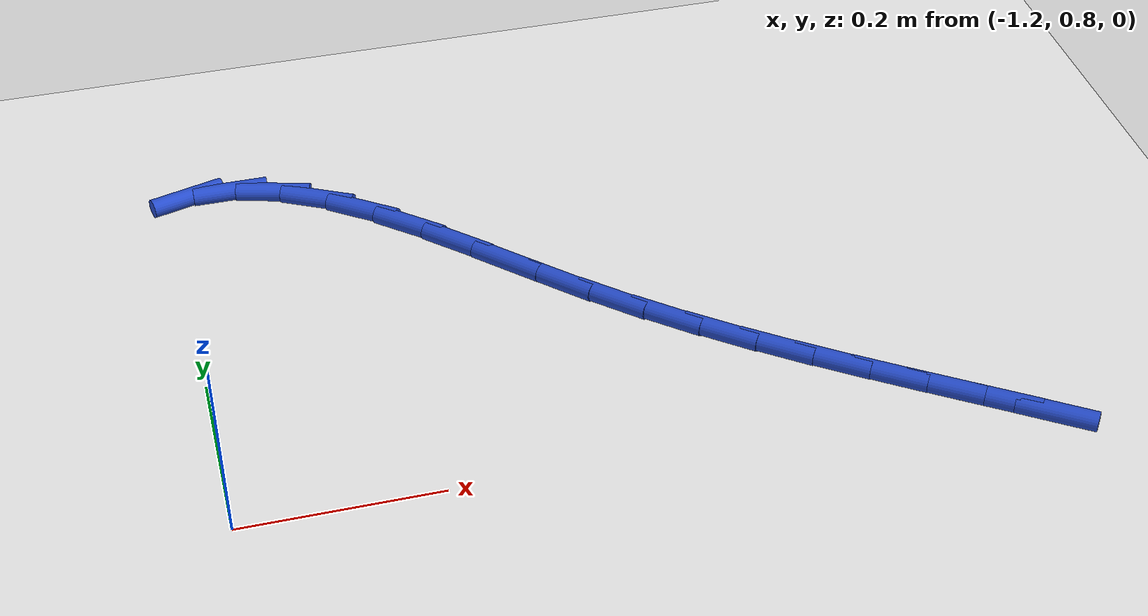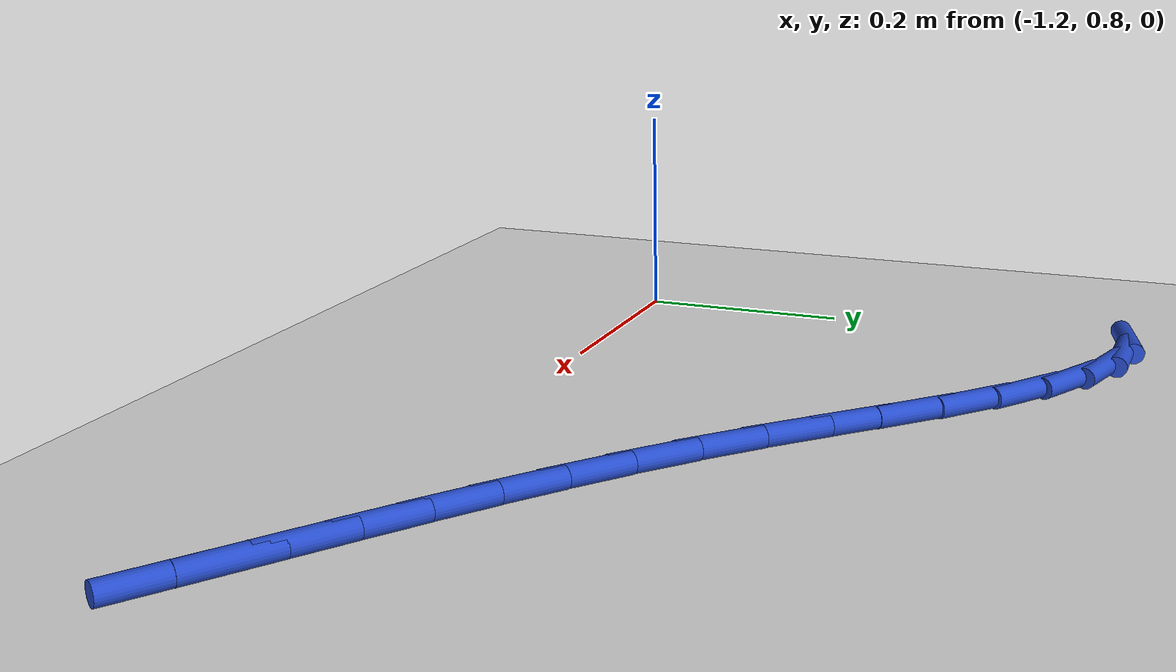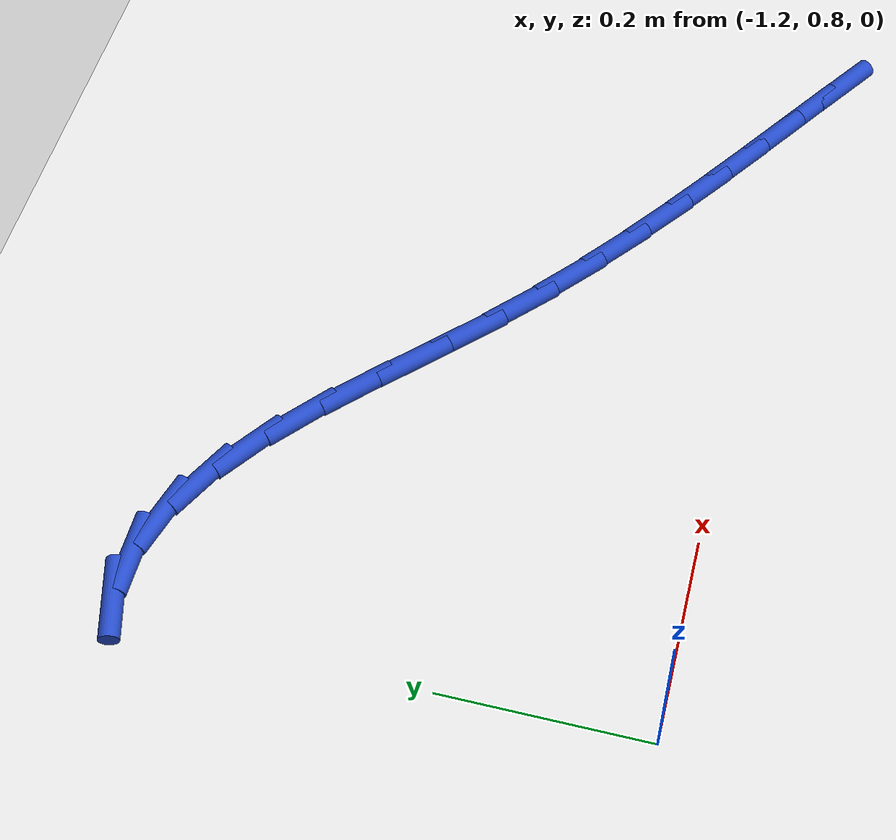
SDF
<sdf version="1.6">
 <world name="default">
  <model name="ground_plane">
   <static>1</static>
   <link name="link">
    <collision name="collision">
     <geometry><plane><normal>0 0 1</normal><size>100 100</size></plane></geometry>
     <surface><friction><ode><mu>100</mu><mu2>50</mu2></ode></friction></surface>
    </collision>
    <visual name="visual">
     <cast_shadows>0</cast_shadows>
     <geometry><plane><normal>0 0 1</normal><size>100 100</size></plane></geometry>
     <material>
      <script><uri>file://media/materials/scripts/gazebo.material</uri><name>Gazebo/WhiteGlow</name></script>
     </material>
    </visual>
   </link>
  </model>
  <model name="line">
   <link name="link_17">
    <pose>-0.4144395852514726 0.7473148418146566 0.01 0 1.57 -0.6064688919162905</pose>
    <collision name="collision">
     <geometry><cylinder><radius>0.01</radius><length>0.08</length></cylinder></geometry>
    </collision>
    <visual name="visual">
     <material>
      <script><name>Gazebo/Blue</name><uri>file://media/materials/scripts/gazebo.material</uri></script>
     </material>
     <geometry><cylinder><radius>0.01</radius><length>0.08</length></cylinder></geometry>
    </visual>
   </link>
   <link name="link_18">
    <pose>-0.4590165250598377 0.7782367848473632 0.01 0 1.57 -0.6008812202760785</pose>
    <collision name="collision">
     <geometry><cylinder><radius>0.01</radius><length>0.08</length></cylinder></geometry>
    </collision>
    <visual name="visual">
     <material>
      <script><name>Gazebo/Blue</name><uri>file://media/materials/scripts/gazebo.material</uri></script>
     </material>
     <geometry><cylinder><radius>0.01</radius><length>0.08</length></cylinder></geometry>
    </visual>
   </link>
   <link name="link_19">
    <pose>-0.5045042600741151 0.8094155003035346 0.01 0 1.57 -0.6029641579892127</pose>
    <collision name="collision">
     <geometry><cylinder><radius>0.01</radius><length>0.08</length></cylinder></geometry>
    </collision>
    <visual name="visual">
     <material>
      <script><name>Gazebo/Blue</name><uri>file://media/materials/scripts/gazebo.material</uri></script>
     </material>
     <geometry><cylinder><radius>0.01</radius><length>0.08</length></cylinder></geometry>
    </visual>
   </link>
   <link name="link_20">
    <pose>-0.5506655034417127 0.8411973859729224 0.01 0 1.57 -0.6123549243584733</pose>
    <collision name="collision">
     <geometry><cylinder><radius>0.01</radius><length>0.08</length></cylinder></geometry>
    </collision>
    <visual name="visual">
     <material>
      <script><name>Gazebo/Blue</name><uri>file://media/materials/scripts/gazebo.material</uri></script>
     </material>
     <geometry><cylinder><radius>0.01</radius><length>0.08</length></cylinder></geometry>
    </visual>
   </link>
   <link name="link_21">
    <pose>-0.5972629683100397 0.8739288396452795 0.01 0 1.57 -0.6287078698892908</pose>
    <collision name="collision">
     <geometry><cylinder><radius>0.01</radius><length>0.08</length></cylinder></geometry>
    </collision>
    <visual name="visual">
     <material>
      <script><name>Gazebo/Blue</name><uri>file://media/materials/scripts/gazebo.material</uri></script>
     </material>
     <geometry><cylinder><radius>0.01</radius><length>0.08</length></cylinder></geometry>
    </visual>
   </link>
   <link name="link_22">
    <pose>-0.644059367826504 0.9079562591103575 0.01 0 1.57 -0.6516800097753971</pose>
    <collision name="collision">
     <geometry><cylinder><radius>0.01</radius><length>0.08</length></cylinder></geometry>
    </collision>
    <visual name="visual">
     <material>
      <script><name>Gazebo/Blue</name><uri>file://media/materials/scripts/gazebo.material</uri></script>
     </material>
     <geometry><cylinder><radius>0.01</radius><length>0.08</length></cylinder></geometry>
    </visual>
   </link>
   <link name="link_23">
    <pose>-0.6908174151385146 0.9436260421579092 0.01 0 1.57 -0.680910064861538</pose>
    <collision name="collision">
     <geometry><cylinder><radius>0.01</radius><length>0.08</length></cylinder></geometry>
    </collision>
    <visual name="visual">
     <material>
      <script><name>Gazebo/Blue</name><uri>file://media/materials/scripts/gazebo.material</uri></script>
     </material>
     <geometry><cylinder><radius>0.01</radius><length>0.08</length></cylinder></geometry>
    </visual>
   </link>
   <link name="link_24">
    <pose>-0.7372998233934798 0.9812845865776866 0.01 0 1.57 -0.7159942586551378</pose>
    <collision name="collision">
     <geometry><cylinder><radius>0.01</radius><length>0.08</length></cylinder></geometry>
    </collision>
    <visual name="visual">
     <material>
      <script><name>Gazebo/Blue</name><uri>file://media/materials/scripts/gazebo.material</uri></script>
     </material>
     <geometry><cylinder><radius>0.01</radius><length>0.08</length></cylinder></geometry>
    </visual>
   </link>
   <link name="link_25">
    <pose>-0.7832693057388078 1.0212782901594415 0.01 0 1.57 -0.7561793472187902</pose>
    <collision name="collision">
     <geometry><cylinder><radius>0.01</radius><length>0.08</length></cylinder></geometry>
    </collision>
    <visual name="visual">
     <material>
      <script><name>Gazebo/Blue</name><uri>file://media/materials/scripts/gazebo.material</uri></script>
     </material>
     <geometry><cylinder><radius>0.01</radius><length>0.08</length></cylinder></geometry>
    </visual>
   </link>
   <link name="link_26">
    <pose>-0.8284927329432289 1.0639332829966084 0.01 0 1.57 -0.7879725726900139</pose>
    <collision name="collision">
     <geometry><cylinder><radius>0.01</radius><length>0.08</length></cylinder></geometry>
    </collision>
    <visual name="visual">
     <material>
      <script><name>Gazebo/Blue</name><uri>file://media/materials/scripts/gazebo.material</uri></script>
     </material>
     <geometry><cylinder><radius>0.01</radius><length>0.08</length></cylinder></geometry>
    </visual>
   </link>
   <link name="link_27">
    <pose>-0.872935917424615 1.1086058885026884 0.01 0 1.57 -0.793965645127022</pose>
    <collision name="collision">
     <geometry><cylinder><radius>0.01</radius><length>0.08</length></cylinder></geometry>
    </collision>
    <visual name="visual">
     <material>
      <script><name>Gazebo/Blue</name><uri>file://media/materials/scripts/gazebo.material</uri></script>
     </material>
     <geometry><cylinder><radius>0.01</radius><length>0.08</length></cylinder></geometry>
    </visual>
   </link>
   <link name="link_28">
    <pose>-0.9168470374378987 1.1532759446938583 0.01 0 1.57 -0.7725655730965395</pose>
    <collision name="collision">
     <geometry><cylinder><radius>0.01</radius><length>0.08</length></cylinder></geometry>
    </collision>
    <visual name="visual">
     <material>
      <script><name>Gazebo/Blue</name><uri>file://media/materials/scripts/gazebo.material</uri></script>
     </material>
     <geometry><cylinder><radius>0.01</radius><length>0.08</length></cylinder></geometry>
    </visual>
   </link>
   <link name="link_29">
    <pose>-0.9604957577724618 1.1958185463878352 0.01 0 1.57 -0.7200126690075901</pose>
    <collision name="collision">
     <geometry><cylinder><radius>0.01</radius><length>0.08</length></cylinder></geometry>
    </collision>
    <visual name="visual">
     <material>
      <script><name>Gazebo/Blue</name><uri>file://media/materials/scripts/gazebo.material</uri></script>
     </material>
     <geometry><cylinder><radius>0.01</radius><length>0.08</length></cylinder></geometry>
    </visual>
   </link>
   <link name="link_30">
    <pose>-1.0041517432176859 1.234108788402338 0.01 0 1.57 -0.6282268395394933</pose>
    <collision name="collision">
     <geometry><cylinder><radius>0.01</radius><length>0.08</length></cylinder></geometry>
    </collision>
    <visual name="visual">
     <material>
      <script><name>Gazebo/Blue</name><uri>file://media/materials/scripts/gazebo.material</uri></script>
     </material>
     <geometry><cylinder><radius>0.01</radius><length>0.08</length></cylinder></geometry>
    </visual>
   </link>
   <link name="link_31">
    <pose>-1.048084658562953 1.2660217655550843 0.01 0 1.57 -0.4844874124882894</pose>
    <collision name="collision">
     <geometry><cylinder><radius>0.01</radius><length>0.08</length></cylinder></geometry>
    </collision>
    <visual name="visual">
     <material>
      <script><name>Gazebo/Blue</name><uri>file://media/materials/scripts/gazebo.material</uri></script>
     </material>
     <geometry><cylinder><radius>0.01</radius><length>0.08</length></cylinder></geometry>
    </visual>
   </link>
   <link name="link_32">
    <pose>-1.0925641685976446 1.289432572663792 0.01 0 1.57 -0.2750734771516769</pose>
    <collision name="collision">
     <geometry><cylinder><radius>0.01</radius><length>0.08</length></cylinder></geometry>
    </collision>
    <visual name="visual">
     <material>
      <script><name>Gazebo/Blue</name><uri>file://media/materials/scripts/gazebo.material</uri></script>
     </material>
     <geometry><cylinder><radius>0.01</radius><length>0.08</length></cylinder></geometry>
    </visual>
   </link>
   <link name="link_33">
    <pose>-1.1378599381111432 1.3022163045461803 0.01 0 1.57 -0.0006990020422541509</pose>
    <collision name="collision">
     <geometry><cylinder><radius>0.01</radius><length>0.08</length></cylinder></geometry>
    </collision>
    <visual name="visual">
     <material>
      <script><name>Gazebo/Blue</name><uri>file://media/materials/scripts/gazebo.material</uri></script>
     </material>
     <geometry><cylinder><radius>0.01</radius><length>0.08</length></cylinder></geometry>
    </visual>
   </link>
   <link name="link_34">
    <pose>-1.1842415689011445 1.302248725406106 0.01 0 1.57 0.27496560778712964</pose>
    <collision name="collision">
     <geometry><cylinder><radius>0.01</radius><length>0.08</length></cylinder></geometry>
    </collision>
    <visual name="visual">
     <material>
      <script><name>Gazebo/Blue</name><uri>file://media/materials/scripts/gazebo.material</uri></script>
     </material>
     <geometry><cylinder><radius>0.01</radius><length>0.08</length></cylinder></geometry>
    </visual>
   </link>
  </model>
 </world>
</sdf>
